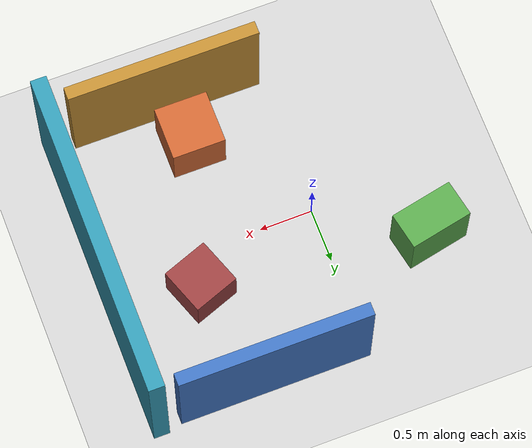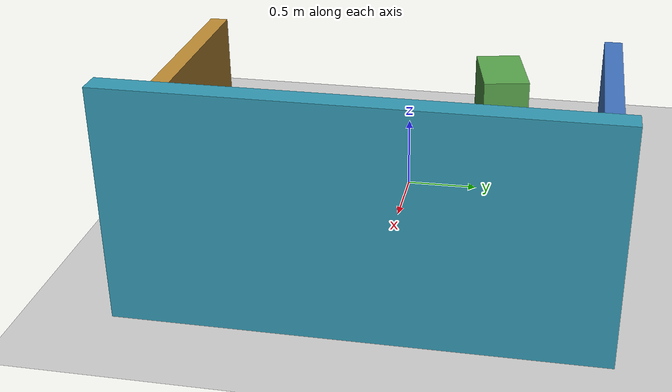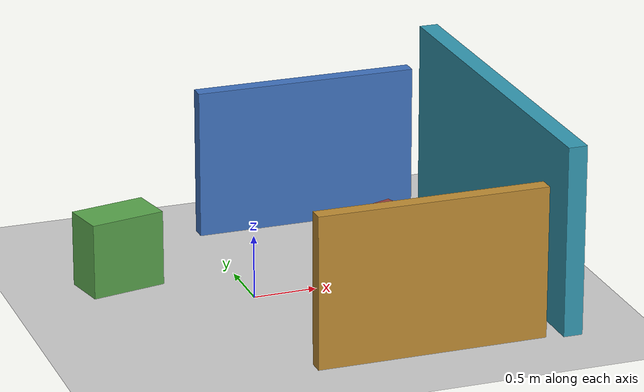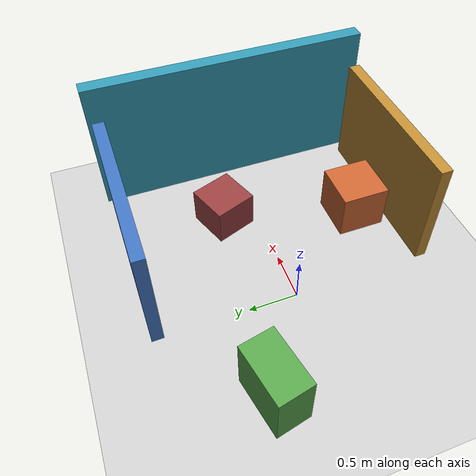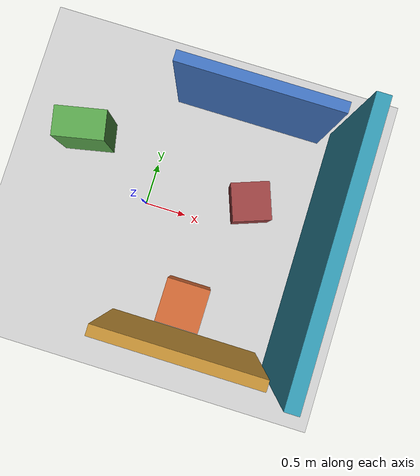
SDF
<?xml version="1.0" ?>
<sdf version="1.8">
  <world name="lidar_test">
    <physics type="ode">
      <max_step_size>0.001</max_step_size>
      <real_time_factor>1.0</real_time_factor>
    </physics>

    <plugin
      filename="libignition-gazebo-physics-system.so"
      name="ignition::gazebo::systems::Physics"/>
    <plugin
      filename="libignition-gazebo-user-commands-system.so"
      name="ignition::gazebo::systems::UserCommands"/>
    <plugin
      filename="libignition-gazebo-scene-broadcaster-system.so"
      name="ignition::gazebo::systems::SceneBroadcaster"/>

    <light name="sun" type="directional">
      <cast_shadows>true</cast_shadows>
      <pose>0 0 10 0 0 0</pose>
      <diffuse>0.8 0.8 0.8 1</diffuse>
      <specular>0.2 0.2 0.2 1</specular>
      <attenuation>
        <range>1000</range>
        <constant>0.9</constant>
        <linear>0.01</linear>
        <quadratic>0.001</quadratic>
      </attenuation>
      <direction>-0.5 0.1 -0.9</direction>
    </light>

    <model name="ground_plane">
      <static>true</static>
      <link name="link">
        <collision name="collision">
          <geometry>
            <plane>
              <normal>0 0 1</normal>
              <size>20 20</size>
            </plane>
          </geometry>
        </collision>
        <visual name="visual">
          <geometry>
            <plane>
              <normal>0 0 1</normal>
              <size>20 20</size>
            </plane>
          </geometry>
          <material>
            <ambient>0.8 0.8 0.8 1</ambient>
            <diffuse>0.8 0.8 0.8 1</diffuse>
          </material>
        </visual>
      </link>
    </model>

    <model name="front_wall">
      <static>true</static>
      <pose>2.0 0.0 0.75 0 0 0</pose>
      <link name="link">
        <collision name="collision">
          <geometry>
            <box>
              <size>0.15 3.0 1.5</size>
            </box>
          </geometry>
        </collision>
        <visual name="visual">
          <geometry>
            <box>
              <size>0.15 3.0 1.5</size>
            </box>
          </geometry>
          <material>
            <ambient>0.2 0.6 0.7 1</ambient>
            <diffuse>0.2 0.6 0.7 1</diffuse>
          </material>
        </visual>
      </link>
    </model>

    <model name="side_box">
      <static>true</static>
      <pose>0.8 -1.0 0.25 0 0 0</pose>
      <link name="link">
        <collision name="collision">
          <geometry>
            <box>
              <size>0.5 0.5 0.5</size>
            </box>
          </geometry>
        </collision>
        <visual name="visual">
          <geometry>
            <box>
              <size>0.5 0.5 0.5</size>
            </box>
          </geometry>
          <material>
            <ambient>0.8 0.4 0.2 1</ambient>
            <diffuse>0.8 0.4 0.2 1</diffuse>
          </material>
        </visual>
      </link>
    </model>

    <model name="left_wall">
      <static>true</static>
      <pose>0.9 1.4 0.6 0 0 0</pose>
      <link name="link">
        <collision name="collision">
          <geometry>
            <box>
              <size>1.8 0.12 1.2</size>
            </box>
          </geometry>
        </collision>
        <visual name="visual">
          <geometry>
            <box>
              <size>1.8 0.12 1.2</size>
            </box>
          </geometry>
          <material>
            <ambient>0.25 0.45 0.75 1</ambient>
            <diffuse>0.25 0.45 0.75 1</diffuse>
          </material>
        </visual>
      </link>
    </model>

    <model name="right_wall">
      <static>true</static>
      <pose>0.9 -1.4 0.6 0 0 0</pose>
      <link name="link">
        <collision name="collision">
          <geometry>
            <box>
              <size>1.8 0.12 1.2</size>
            </box>
          </geometry>
        </collision>
        <visual name="visual">
          <geometry>
            <box>
              <size>1.8 0.12 1.2</size>
            </box>
          </geometry>
          <material>
            <ambient>0.75 0.55 0.2 1</ambient>
            <diffuse>0.75 0.55 0.2 1</diffuse>
          </material>
        </visual>
      </link>
    </model>

    <model name="center_box">
      <static>true</static>
      <pose>1.2 0.35 0.2 0 0 0.35</pose>
      <link name="link">
        <collision name="collision">
          <geometry>
            <box>
              <size>0.45 0.45 0.4</size>
            </box>
          </geometry>
        </collision>
        <visual name="visual">
          <geometry>
            <box>
              <size>0.45 0.45 0.4</size>
            </box>
          </geometry>
          <material>
            <ambient>0.6 0.25 0.25 1</ambient>
            <diffuse>0.6 0.25 0.25 1</diffuse>
          </material>
        </visual>
      </link>
    </model>

    <model name="rear_box">
      <static>true</static>
      <pose>-0.9 0.6 0.3 0 0 0.2</pose>
      <link name="link">
        <collision name="collision">
          <geometry>
            <box>
              <size>0.6 0.35 0.6</size>
            </box>
          </geometry>
        </collision>
        <visual name="visual">
          <geometry>
            <box>
              <size>0.6 0.35 0.6</size>
            </box>
          </geometry>
          <material>
            <ambient>0.35 0.65 0.3 1</ambient>
            <diffuse>0.35 0.65 0.3 1</diffuse>
          </material>
        </visual>
      </link>
    </model>
  </world>
</sdf>
